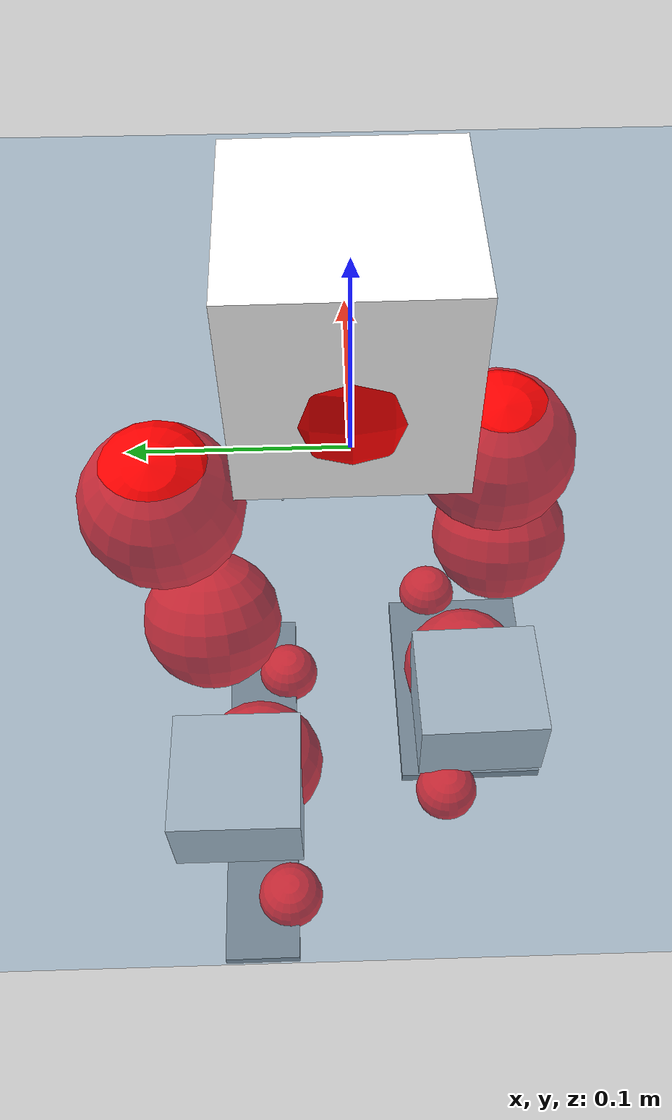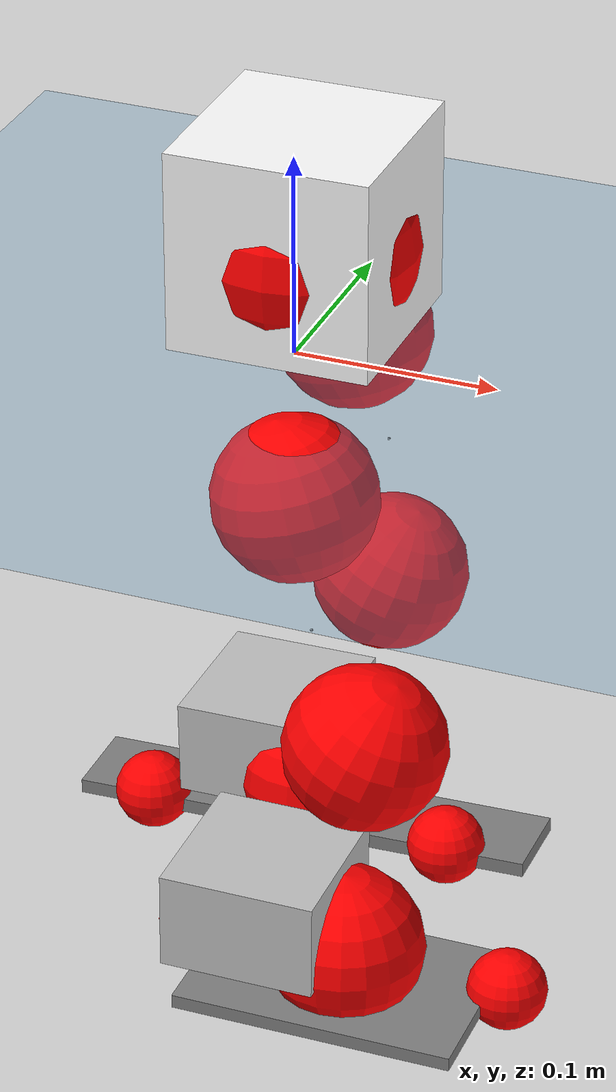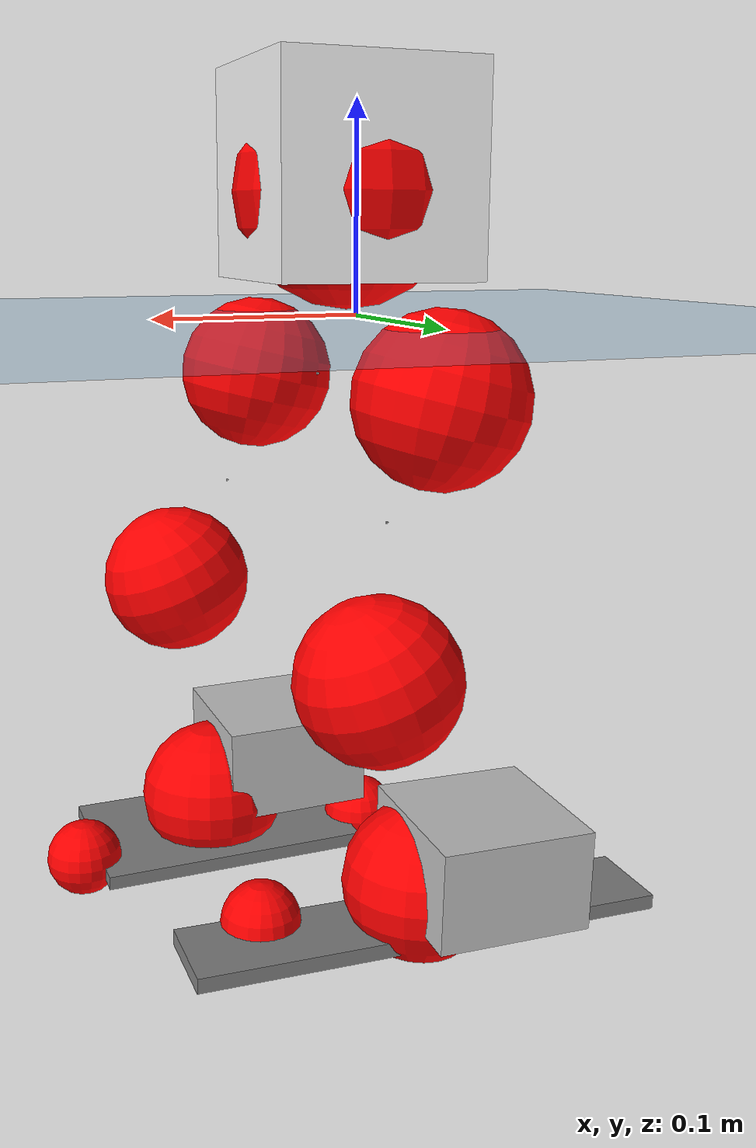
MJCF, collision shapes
<mujoco model="pi_12dof_release_v1">
  <compiler angle="radian" assetdir="assets" balanceinertia="true" inertiafromgeom="false"/>

  <option timestep="0.005" density="1.2" viscosity="2e-05"/>

  <size nkey="1"/>

  <visual>
    <quality shadowsize="8192"/>
    <map shadowclip="0.5"/>
  </visual>

  <default>
    <default class="/">
      <joint armature="0.01" damping="0.01" frictionloss="0.01"/>
      <geom contype="0" conaffinity="0" group="1" solref="-1000 -80"/>
      <site size="0.01 0.005 0.005" group="5"/>
      <general forcelimited="true" biastype="affine" gainprm="20" biasprm="0 -20 -0.5"/>
      <default class="foot">
        <geom size="0.0845 0.036 0.005" type="box" condim="6" group="4" priority="1" friction="0.9 0.2 0.2" solimp="0.015 1 0.005"/>
      </default>
      <default class="reward_collision_sphere">
        <geom group="5" rgba="1 0 0 1"/>
      </default>
    </default>
  </default>

  <asset>
    <texture type="skybox" colorspace="auto" name="//unnamed_texture_0" builtin="gradient" rgb1="0.95 0.95 0.95" rgb2="0.95 0.95 0.95" width="100" height="600"/>
    <texture type="2d" colorspace="auto" name="texplane" builtin="checker" rgb1="0.345 0.575 0.748" rgb2="0.345 0.575 0.748" markrgb="1 1 1" width="512" height="512"/>
    <material name="MatPlane" class="/" texture="texplane" texuniform="true" texrepeat="2 2" specular="0.9"/>
    <mesh name="baselink_1" class="/" file="baselink_1.STL"/>
    <mesh name="r_hip_pitch_link" class="/" file="r_hip_pitch_link.STL"/>
    <mesh name="r_hip_roll_link" class="/" file="r_hip_roll_link.STL"/>
    <mesh name="r_thigh_link" class="/" file="r_thigh_link.STL"/>
    <mesh name="r_calf_link" class="/" file="r_calf_link.STL"/>
    <mesh name="r_ankle_pitch_link" class="/" file="r_ankle_pitch_link.STL"/>
    <mesh name="r_ankle_roll_link" class="/" file="r_ankle_roll_link.STL"/>
    <mesh name="l_hip_pitch_link" class="/" file="l_hip_pitch_link.STL"/>
    <mesh name="l_hip_roll_link" class="/" file="l_hip_roll_link.STL"/>
    <mesh name="l_thigh_link" class="/" file="l_thigh_link.STL"/>
    <mesh name="l_calf_link" class="/" file="l_calf_link.STL"/>
    <mesh name="l_ankle_pitch_link" class="/" file="l_ankle_pitch_link.STL"/>
    <mesh name="l_ankle_roll_link" class="/" file="l_ankle_roll_link.STL"/>
  </asset>

  <worldbody>
    <geom name="floor" class="/" size="100 100 0.125" type="plane" group="0" material="MatPlane"/>
    <light name="toplight_shadow" class="/" pos="0 0 5" dir="0.0990148 0.0990148 -0.990148" type="directional" ambient="0.04 0.04 0.04" diffuse="0.55 0.55 0.55" specular="0.12 0.12 0.12"/>
    <light name="toplight_fill" class="/" pos="0 0 5" dir="0.0990148 0.0990148 -0.990148" type="directional" castshadow="false" ambient="0.04 0.04 0.04" diffuse="0.3 0.3 0.3" specular="0.08 0.08 0.08"/>
    <body name="trunk" pos="0.00532113 0.000634828 -0.00663233" quat="0.999992 -0.00193757 -0.00156448 0.00306929">
      <inertial pos="0.0193693 0.0133182 0.0444014" quat="0.696856 0.00368373 -0.0134716 0.717075" mass="1.62837" diaginertia="0.0219753 0.00419935 0.00239733"/>
      <joint name="//unnamed_joint_0" type="free"/>
      <geom name="//unnamed_geom_1" class="/" type="mesh" density="0" rgba="1 1 1 1" mesh="baselink_1"/>
      <geom name="//unnamed_geom_2" class="/" size="0.0492098 0.0492098 0.0492098" pos="0 0 0.0728124" type="box" rgba="1 1 1 1"/>
      <geom name="//unnamed_geom_3" class="reward_collision_sphere" size="0.0541307" pos="0 0 0.0637109"/>
      <site name="imu" class="/" pos="-0.0727572 -0.00393014 0.0724766" size="0.00984195"/>
      <camera name="track" class="/" pos="0 -1.72328 0" quat="0.707107 0.707107 0 0" mode="trackcom"/>
      <camera name="ego_camera" class="/" pos="0.0885591 0 0.163828" quat="-0.5 -0.5 0.5 0.5"/>
      <body name="r_hip_pitch_link" pos="0.011822 -0.00763754 -0.0216668" quat="0.992281 -0.000235145 -0.124 -0.00147809">
        <inertial pos="0.00197074 -0.0358687 0.00208465" quat="-0.018821 0.702909 -0.028855 0.710445" mass="0.379147" diaginertia="0.000299104 6.49465e-05 6.31836e-05"/>
        <joint name="r_hip_pitch_joint" class="/" pos="0 0 0" axis="0.00477119 -0.999347 0.035809" range="-1.79111 1.55265" armature="0.0165155" damping="0.0335128" frictionloss="0.0135705"/>
        <geom name="//unnamed_geom_4" class="/" type="mesh" density="0" rgba="0.75294 0.75294 0.75294 1" mesh="r_hip_pitch_link"/>
        <geom name="//unnamed_geom_5" class="/" size="0.000492098 0.000492098 0.000492098" type="box" rgba="0.75294 0.75294 0.75294 1"/>
        <body name="r_hip_roll_link" pos="0.00956803 -0.0642722 -0.00824511" quat="0.999976 0.00321026 0.00618426 -0.000190331">
          <inertial pos="-0.0032489 -0.000326995 -0.064445" quat="0.699101 -0.0962224 -0.0261193 0.708037" mass="0.43373" diaginertia="0.000781156 0.000162887 7.6408e-05"/>
          <joint name="r_hip_roll_joint" class="/" pos="0 0 0" axis="-0.998395 -0.0468111 0.0318716" stiffness="0.00880429" range="-0.179493 0.46249" armature="0.0145217" damping="0.0745532" frictionloss="0.00246863"/>
          <geom name="//unnamed_geom_6" class="/" type="mesh" density="0" rgba="0.75294 0.75294 0.75294 1" mesh="r_hip_roll_link"/>
          <geom name="//unnamed_geom_7" class="/" size="0.000492098 0.000492098 0.000492098" type="box" rgba="0.75294 0.75294 0.75294 1"/>
          <geom name="//unnamed_geom_8" class="reward_collision_sphere" size="0.0393678"/>
          <body name="r_thigh_link" pos="-0.00111847 -0.0138572 -0.0612557" quat="0.999997 -0.000376615 -0.000326652 0.00239961">
            <inertial pos="0.000409348 -0.0034597 -0.0350219" quat="0.736164 0.676799 -0.000969213 -0.00222662" mass="0.113009" diaginertia="0.000349367 4.56907e-05 3.58275e-05"/>
            <joint name="r_thigh_joint" class="/" pos="0 0 0" axis="-0.00764051 0.017482 -0.999818" range="-0.0779331 0.668436" armature="0.00184388" damping="0.0322633" frictionloss="0.00561905"/>
            <geom name="//unnamed_geom_9" class="/" type="mesh" density="0" rgba="0.75294 0.75294 0.75294 1" mesh="r_thigh_link"/>
            <geom name="//unnamed_geom_10" class="/" size="0.000492098 0.000492098 0.000492098" type="box" rgba="0.75294 0.75294 0.75294 1"/>
            <body name="r_calf_link" pos="0.0148881 -0.00517164 -0.0592879" quat="0.947648 -0.000358685 0.319317 -7.01689e-05">
              <inertial pos="0.00979312 0.0157579 -0.0530402" quat="0.997058 0.00261344 0.072309 -0.0253084" mass="0.758434" diaginertia="0.00887508 0.0012979 0.000118948"/>
              <joint name="r_calf_joint" class="/" pos="0 0 0" axis="0.0467437 -0.998561 0.0262753" range="-1.66591 0.498579" armature="0.014379" damping="0.0334744" frictionloss="0.00876364"/>
              <geom name="//unnamed_geom_11" class="/" type="mesh" density="0" rgba="0.75294 0.75294 0.75294 1" mesh="r_calf_link"/>
              <geom name="//unnamed_geom_12" class="/" size="0.000492098 0.000492098 0.000492098" type="box" rgba="0.75294 0.75294 0.75294 1"/>
              <geom name="//unnamed_geom_13" class="reward_collision_sphere" size="0.0393678"/>
              <body name="r_ankle_pitch_link" pos="-0.00894061 0.0089112 -0.114568" quat="0.979581 -0.00450452 -0.200962 0.0039535">
                <inertial pos="-0.00911632 0.0090011 0.00933768" quat="-0.0258712 0.725566 0.0257945 0.687182" mass="0.149822" diaginertia="0.000837549 0.000128638 6.43831e-05"/>
                <joint name="r_ankle_pitch_joint" class="/" pos="0 0 0" axis="0.00722657 -0.998566 -0.0530482" stiffness="0.0551356" range="-1.57011 0.290794" armature="0.00526205" damping="0.0695313" frictionloss="0.0111055"/>
                <geom name="//unnamed_geom_14" class="/" type="mesh" density="0" rgba="0.75294 0.75294 0.75294 1" mesh="r_ankle_pitch_link"/>
                <geom name="//unnamed_geom_15" class="/" size="0.0383836 0.0393678 0.0246049" type="box" rgba="0.75294 0.75294 0.75294 1"/>
                <body name="r_ankle_roll_link" pos="0.0984644 0.00294847 -0.00319201" quat="0.999989 0.00204796 -0.00305365 -0.00290506">
                  <inertial pos="-0.0162536 0.000899594 -0.0132837" quat="0.605692 0.453962 0.385111 0.527963" mass="0.3696" diaginertia="0.00199941 0.000457474 0.000150712"/>
                  <joint name="r_ankle_roll_joint" class="/" pos="0 0 0" axis="-0.998978 -0.0443198 0.00886558" stiffness="0.00932314" range="-0.357942 0.143484" armature="0.00250596" damping="0" frictionloss="0.00717497"/>
                  <geom name="//unnamed_geom_16" class="/" type="mesh" density="0" rgba="0.75294 0.75294 0.75294 1" mesh="r_ankle_roll_link"/>
                  <geom name="//unnamed_geom_17" class="/" type="mesh" rgba="0.75294 0.75294 0.75294 1" mesh="r_ankle_roll_link"/>
                  <geom name="right_foot" class="foot" size="0.0702326 0.044997 0.00347627" pos="-0.0602202 0 -0.0400468"/>
                  <geom name="//unnamed_geom_19" class="reward_collision_sphere" size="0.0393678" pos="-0.0590394 0 -0.0182031"/>
                  <geom name="//unnamed_geom_20" class="reward_collision_sphere" size="0.0196839" pos="0.0177118 0.0172328 -0.0364062"/>
                  <geom name="//unnamed_geom_21" class="reward_collision_sphere" size="0.0196839" pos="-0.141695 0.0172328 -0.0364062"/>
                  <site name="right_foot" class="foot" pos="-0.0602202 0 -0.0400468" size="0.00984195"/>
                </body>
              </body>
            </body>
          </body>
        </body>
      </body>
      <body name="l_hip_pitch_link" pos="-0.0137107 0.0310158 -0.0168602" quat="0.992172 -0.000366013 -0.124879 -0.000465174">
        <inertial pos="-0.000431933 0.0360737 0.0150501" quat="-0.00194076 0.736594 0.00652809 0.676301" mass="0.300534" diaginertia="0.000189296 4.29974e-05 5.6917e-05"/>
        <joint name="l_hip_pitch_joint" class="/" pos="0 0 0" axis="-0.00422837 0.999981 0.00458886" stiffness="0.0524934" range="-1.32587 1.73662" armature="0.00927557" damping="0" frictionloss="0.0150517"/>
        <geom name="//unnamed_geom_22" class="/" type="mesh" density="0" rgba="0.75294 0.75294 0.75294 1" mesh="l_hip_pitch_link"/>
        <geom name="//unnamed_geom_23" class="/" size="0.000492098 0.000492098 0.000492098" type="box" rgba="0.75294 0.75294 0.75294 1"/>
        <body name="l_hip_roll_link" pos="0.00253011 0.0565183 -0.00789128" quat="0.999994 -0.00185694 -0.0027287 -0.00112303">
          <inertial pos="0.0140408 -0.00626196 -0.0400601" quat="0.699162 -0.0746455 -0.0786913 0.706688" mass="0.460339" diaginertia="0.0010437 0.000129402 8.33955e-05"/>
          <joint name="l_hip_roll_joint" class="/" pos="0 0 0" axis="-0.999691 -0.00824333 -0.023443" stiffness="0.00632242" range="-0.632486 0.20653" armature="0.0123454" damping="0" frictionloss="0.0144391"/>
          <geom name="//unnamed_geom_24" class="/" type="mesh" density="0" rgba="0.75294 0.75294 0.75294 1" mesh="l_hip_roll_link"/>
          <geom name="//unnamed_geom_25" class="/" size="0.000492098 0.000492098 0.000492098" type="box" rgba="0.75294 0.75294 0.75294 1"/>
          <geom name="//unnamed_geom_26" class="reward_collision_sphere" size="0.0393678"/>
          <body name="l_thigh_link" pos="0.00730701 -0.00702878 -0.056844" quat="1 -0.000621821 -0.00024239 3.7012e-05">
            <inertial pos="-0.00868442 -0.0146149 -0.0369881" quat="0.673624 0.73736 -0.0178061 -0.0470457" mass="0.0841689" diaginertia="0.000257434 2.96667e-05 2.6479e-05"/>
            <joint name="l_thigh_joint" class="/" pos="0 0 0" axis="0.0129875 -0.00201694 -0.999914" stiffness="0.0656528" range="-0.30297 0.494429" armature="0.006974" damping="0" frictionloss="0.00964105"/>
            <geom name="//unnamed_geom_27" class="/" type="mesh" density="0" rgba="0.75294 0.75294 0.75294 1" mesh="l_thigh_link"/>
            <geom name="//unnamed_geom_28" class="/" size="0.000492098 0.000492098 0.000492098" type="box" rgba="0.75294 0.75294 0.75294 1"/>
            <body name="l_calf_link" pos="-0.0165202 -0.00167612 -0.0714201" quat="0.947702 -0.000889126 0.319156 -0.000194015">
              <inertial pos="0.00998434 -0.00569904 -0.0482959" quat="0.996233 -0.040169 -0.00329129 0.0767803" mass="0.78403" diaginertia="0.00980192 0.00198834 0.000129689"/>
              <joint name="l_calf_joint" class="/" pos="0 0 0" axis="-0.0599547 0.998102 -0.0140412" range="-0.645649 1.51663" armature="0.00906636" damping="0.0603341" frictionloss="0.00643464"/>
              <geom name="//unnamed_geom_29" class="/" type="mesh" density="0" rgba="0.75294 0.75294 0.75294 1" mesh="l_calf_link"/>
              <geom name="//unnamed_geom_30" class="/" size="0.000492098 0.000492098 0.000492098" type="box" rgba="0.75294 0.75294 0.75294 1"/>
              <geom name="//unnamed_geom_31" class="reward_collision_sphere" size="0.0393678"/>
              <body name="l_ankle_pitch_link" pos="-0.0153914 -0.00663567 -0.113658" quat="0.978892 0.00186307 -0.204358 -0.00206956">
                <inertial pos="0.0044299 -0.0102481 -0.00500966" quat="-0.00491679 0.706943 0.000185875 0.707253" mass="0.216389" diaginertia="0.000912157 0.000122028 8.76294e-05"/>
                <joint name="l_ankle_pitch_joint" class="/" pos="0 0 0" axis="6.50479e-05 0.999998 0.0019124" stiffness="0.00622927" range="-0.327072 1.5092" armature="0.0144153" damping="0" frictionloss="0.00612831"/>
                <geom name="//unnamed_geom_32" class="/" type="mesh" density="0" rgba="0.75294 0.75294 0.75294 1" mesh="l_ankle_pitch_link"/>
                <geom name="//unnamed_geom_33" class="/" size="0.0383836 0.0393678 0.0246049" type="box" rgba="0.75294 0.75294 0.75294 1"/>
                <body name="l_ankle_roll_link" pos="0.0839484 -0.0123543 0.00372024" quat="0.999974 0.00253302 -0.00431968 0.00528352">
                  <inertial pos="-0.040652 0.00804569 -0.0187917" quat="0.524296 0.43777 0.414201 0.601588" mass="0.468493" diaginertia="0.00289898 0.000483317 0.000197168"/>
                  <joint name="l_ankle_roll_joint" class="/" pos="0 0 0" axis="-1 -0.000263068 6.3703e-05" stiffness="0.0719906" range="-0.414891 0.367365" armature="0.00318254" damping="0" frictionloss="0.00592436"/>
                  <geom name="//unnamed_geom_34" class="/" type="mesh" density="0" rgba="0.75294 0.75294 0.75294 1" mesh="l_ankle_roll_link"/>
                  <geom name="//unnamed_geom_35" class="/" type="mesh" rgba="0.75294 0.75294 0.75294 1" mesh="l_ankle_roll_link"/>
                  <geom name="left_foot" class="foot" size="0.12011 0.0221132 0.0037155" pos="-0.0602202 0 -0.0400468"/>
                  <geom name="//unnamed_geom_37" class="reward_collision_sphere" size="0.0393678" pos="-0.0590394 0 -0.0182031"/>
                  <geom name="//unnamed_geom_38" class="reward_collision_sphere" size="0.0196839" pos="0.0177118 -0.0172328 -0.0364062"/>
                  <geom name="//unnamed_geom_39" class="reward_collision_sphere" size="0.0196839" pos="-0.141695 -0.0172328 -0.0364062"/>
                  <site name="left_foot" class="foot" pos="-0.0602202 0 -0.0400468" size="0.00984195"/>
                </body>
              </body>
            </body>
          </body>
        </body>
      </body>
    </body>
  </worldbody>

  <contact>
    <pair class="/" geom1="floor" geom2="right_foot" name="//unnamed_contact_1"/>
    <pair class="/" geom1="floor" geom2="left_foot" name="//unnamed_contact_0"/>
  </contact>

  <actuator>
    <general name="r_hip_pitch_joint" class="/" joint="r_hip_pitch_joint" forcerange="-11.1264 11.1264" gainprm="27.911" biasprm="0 -27.911 -0.51162"/>
    <general name="r_hip_roll_joint" class="/" joint="r_hip_roll_joint" forcerange="-21.1551 21.1551" gainprm="27.911" biasprm="0 -27.911 -0.51162"/>
    <general name="r_thigh_joint" class="/" joint="r_thigh_joint" forcerange="-19.0766 19.0766" gainprm="27.911" biasprm="0 -27.911 -0.51162"/>
    <general name="r_calf_joint" class="/" joint="r_calf_joint" forcerange="-9.57752 9.57752" gainprm="27.911" biasprm="0 -27.911 -0.51162"/>
    <general name="r_ankle_pitch_joint" class="/" joint="r_ankle_pitch_joint" forcerange="-17.5708 17.5708" gainprm="27.911" biasprm="0 -27.911 -0.51162"/>
    <general name="r_ankle_roll_joint" class="/" joint="r_ankle_roll_joint" forcerange="-22.7946 22.7946" gainprm="27.911" biasprm="0 -27.911 -0.51162"/>
    <general name="l_hip_pitch_joint" class="/" joint="l_hip_pitch_joint" forcerange="-29.9862 29.9862" gainprm="27.911" biasprm="0 -27.911 -0.51162"/>
    <general name="l_hip_roll_joint" class="/" joint="l_hip_roll_joint" forcerange="-32.3809 32.3809" gainprm="27.911" biasprm="0 -27.911 -0.51162"/>
    <general name="l_thigh_joint" class="/" joint="l_thigh_joint" forcerange="-25.6904 25.6904" gainprm="27.911" biasprm="0 -27.911 -0.51162"/>
    <general name="l_calf_joint" class="/" joint="l_calf_joint" forcerange="-20.0817 20.0817" gainprm="27.911" biasprm="0 -27.911 -0.51162"/>
    <general name="l_ankle_pitch_joint" class="/" joint="l_ankle_pitch_joint" forcerange="-12.0986 12.0986" gainprm="27.911" biasprm="0 -27.911 -0.51162"/>
    <general name="l_ankle_roll_joint" class="/" joint="l_ankle_roll_joint" forcerange="-24.0375 24.0375" gainprm="27.911" biasprm="0 -27.911 -0.51162"/>
  </actuator>

  <sensor>
    <gyro site="imu" name="imu_angular_velocity"/>
    <velocimeter site="imu" name="imu_linear_velocity"/>
    <framelinvel objtype="site" objname="left_foot" name="left_foot_global_linear_velocity"/>
    <framelinvel objtype="site" objname="right_foot" name="right_foot_global_linear_velocity"/>
  </sensor>

  <keyframe>
    <key name="home" qpos="0 0 0.291 1 0 0 0 0.4 0 0 -0.8 0.4 0 -0.4 0 0 0.8 -0.4 0"/>
  </keyframe>
</mujoco>
